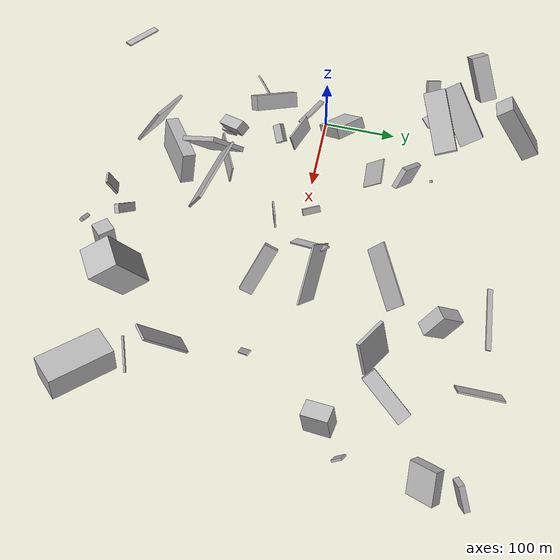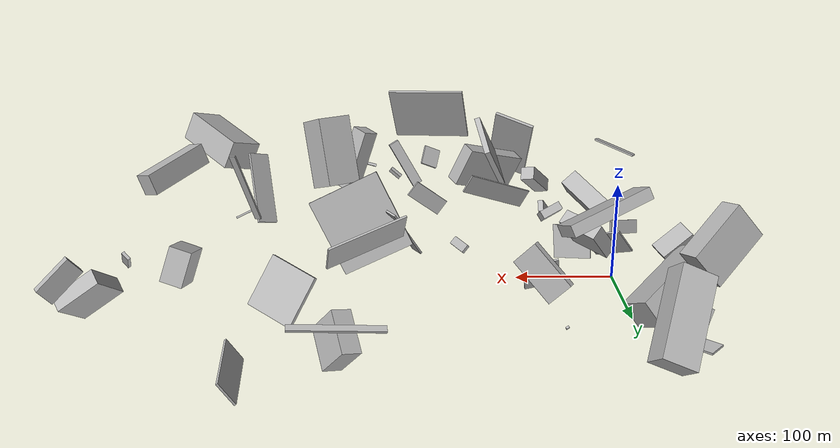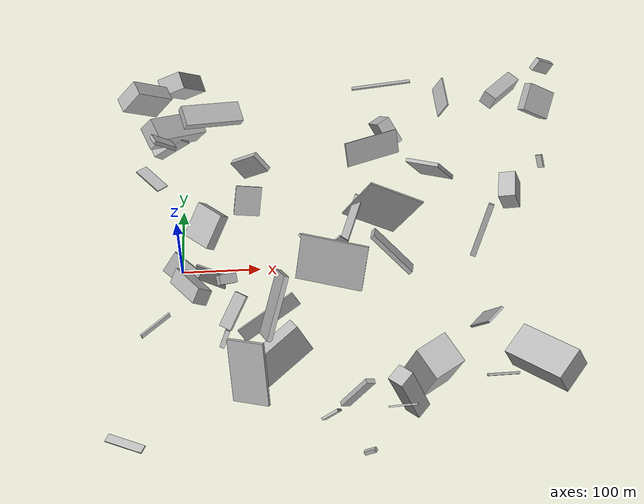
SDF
<sdf version="1.6">
 <world name="default">
  <scene>
   <sky><clouds><speed>12</speed></clouds></sky>
   <ambient>0.4 0.4 0.4 1</ambient>
   <background>0.7 0.7 0.7 1</background>
   <shadows>1</shadows>
  </scene>
  <gravity>0 0 -9.8066</gravity>
  <magnetic_field>6e-06 2.3e-05 -4.2e-05</magnetic_field>
  <physics default="0" name="default_physics" type="ode">
   <ode>
    <solver>
     <type>quick</type>
     <iters>10</iters>
     <sor>1.0</sor>
     <use_dynamic_moi_rescaling>0</use_dynamic_moi_rescaling>
    </solver>
    <constraints>
     <cfm>0</cfm>
     <erp>0.2</erp>
     <contact_max_correcting_vel>100</contact_max_correcting_vel>
     <contact_surface_layer>0.001</contact_surface_layer>
    </constraints>
   </ode>
   <max_step_size>0.004</max_step_size>
   <real_time_factor>1</real_time_factor>
   <real_time_update_rate>250</real_time_update_rate>
  </physics>
  <light name="sun" type="directional">
   <pose>0 0 10 0 0 0</pose>
   <diffuse>0.8 0.8 0.8 1</diffuse>
   <specular>0.2 0.2 0.2 1</specular>
   <attenuation>
    <range>1000</range>
    <constant>0.9</constant>
    <linear>0.01</linear>
    <quadratic>0.001</quadratic>
   </attenuation>
   <direction>-0.5 0.1 -0.9</direction>
  </light>
  <model name="building_1">
   <static>0</static>
   <pose>-54.12104526353068 -279.4260582834963 56.42306659424305 2.029990229281349 1.2701604738345085 -0.05880971864088433</pose>
   <link name="link">
    <gravity>0</gravity>
    <pose>0 0 5.0 0 0 0</pose>
    <collision name="collision"><geometry><box><size>2 53 10</size></box></geometry></collision>
    <visual name="visual">
     <cast_shadows>0</cast_shadows>
     <geometry><box><size>2 53 10</size></box></geometry>
     <material>
      <script>
       <uri>model://HANNAS_wall/materials/scripts</uri>
       <uri>model://HANNAS_wall/materials/textures</uri>
       <name>vrc/HANNAS_wall</name>
      </script>
     </material>
    </visual>
   </link>
  </model>
  <model name="building_2">
   <static>0</static>
   <pose>158.58533480993572 10.954198415435453 40.52656688939705 0.8110739471106881 0.06341755641401571 2.04821923657867</pose>
   <link name="link">
    <gravity>0</gravity>
    <pose>0 0 1.5 0 0 0</pose>
    <collision name="collision"><geometry><box><size>24 9 3</size></box></geometry></collision>
    <visual name="visual">
     <cast_shadows>0</cast_shadows>
     <geometry><box><size>24 9 3</size></box></geometry>
     <material>
      <script>
       <uri>model://HANNAS_wall/materials/scripts</uri>
       <uri>model://HANNAS_wall/materials/textures</uri>
       <name>vrc/HANNAS_wall</name>
      </script>
     </material>
    </visual>
   </link>
  </model>
  <model name="building_3">
   <static>0</static>
   <pose>317.5450510433943 -196.9492003545884 74.72234874410606 1.6592831073558536 -1.237827599436102 -1.0773850951336568</pose>
   <link name="link">
    <gravity>0</gravity>
    <pose>0 0 20.5 0 0 0</pose>
    <collision name="collision"><geometry><box><size>80 40 41</size></box></geometry></collision>
    <visual name="visual">
     <cast_shadows>0</cast_shadows>
     <geometry><box><size>80 40 41</size></box></geometry>
     <material>
      <script>
       <uri>model://HANNAS_wall/materials/scripts</uri>
       <uri>model://HANNAS_wall/materials/textures</uri>
       <name>vrc/HANNAS_wall</name>
      </script>
     </material>
    </visual>
   </link>
  </model>
  <model name="building_4">
   <static>0</static>
   <pose>282.87674144524533 207.8721314182061 34.53993922502799 1.8650441779689133 -0.7430756425512195 -1.2343311509607544</pose>
   <link name="link">
    <gravity>0</gravity>
    <pose>0 0 9.5 0 0 0</pose>
    <collision name="collision"><geometry><box><size>40 37 19</size></box></geometry></collision>
    <visual name="visual">
     <cast_shadows>0</cast_shadows>
     <geometry><box><size>40 37 19</size></box></geometry>
     <material>
      <script>
       <uri>model://HANNAS_wall/materials/scripts</uri>
       <uri>model://HANNAS_wall/materials/textures</uri>
       <name>vrc/HANNAS_wall</name>
      </script>
     </material>
    </visual>
   </link>
  </model>
  <model name="building_5">
   <static>0</static>
   <pose>-1.6601873596502355 182.02116062171706 82.81501853527615 -2.6468392210724465 -0.4229400086449476 2.0213747762980545</pose>
   <link name="link">
    <gravity>0</gravity>
    <pose>0 0 13.0 0 0 0</pose>
    <collision name="collision"><geometry><box><size>32 80 26</size></box></geometry></collision>
    <visual name="visual">
     <cast_shadows>0</cast_shadows>
     <geometry><box><size>32 80 26</size></box></geometry>
     <material>
      <script>
       <uri>model://HANNAS_wall/materials/scripts</uri>
       <uri>model://HANNAS_wall/materials/textures</uri>
       <name>vrc/HANNAS_wall</name>
      </script>
     </material>
    </visual>
   </link>
  </model>
  <model name="building_6">
   <static>0</static>
   <pose>42.369410208570116 155.94454185457096 123.69525174473085 -0.340934163165773 -0.3103837993402411 -2.7607938123857565</pose>
   <link name="link">
    <gravity>0</gravity>
    <pose>0 0 5.5 0 0 0</pose>
    <collision name="collision"><geometry><box><size>80 28 11</size></box></geometry></collision>
    <visual name="visual">
     <cast_shadows>0</cast_shadows>
     <geometry><box><size>80 28 11</size></box></geometry>
     <material>
      <script>
       <uri>model://HANNAS_wall/materials/scripts</uri>
       <uri>model://HANNAS_wall/materials/textures</uri>
       <name>vrc/HANNAS_wall</name>
      </script>
     </material>
    </visual>
   </link>
  </model>
  <model name="building_7">
   <static>0</static>
   <pose>308.37814629060455 136.54995752910804 35.65260569717689 1.018930942010238 0.9938372828579397 0.554341363909308</pose>
   <link name="link">
    <gravity>0</gravity>
    <pose>0 0 24.0 0 0 0</pose>
    <collision name="collision"><geometry><box><size>51 5 48</size></box></geometry></collision>
    <visual name="visual">
     <cast_shadows>0</cast_shadows>
     <geometry><box><size>51 5 48</size></box></geometry>
     <material>
      <script>
       <uri>model://HANNAS_wall/materials/scripts</uri>
       <uri>model://HANNAS_wall/materials/textures</uri>
       <name>vrc/HANNAS_wall</name>
      </script>
     </material>
    </visual>
   </link>
  </model>
  <model name="building_8">
   <static>0</static>
   <pose>291.6413889417407 31.792575482453405 56.59743666149948 0.21495404813556976 -1.083599200323883 -0.3268674816894052</pose>
   <link name="link">
    <gravity>0</gravity>
    <pose>0 0 37.5 0 0 0</pose>
    <collision name="collision"><geometry><box><size>80 2 75</size></box></geometry></collision>
    <visual name="visual">
     <cast_shadows>0</cast_shadows>
     <geometry><box><size>80 2 75</size></box></geometry>
     <material>
      <script>
       <uri>model://HANNAS_wall/materials/scripts</uri>
       <uri>model://HANNAS_wall/materials/textures</uri>
       <name>vrc/HANNAS_wall</name>
      </script>
     </material>
    </visual>
   </link>
  </model>
  <model name="building_9">
   <static>0</static>
   <pose>4.050706653901194 251.01895577853188 71.62987116171568 -0.6447580588841194 0.8138863875727159 1.121520052417578</pose>
   <link name="link">
    <gravity>0</gravity>
    <pose>0 0 11.5 0 0 0</pose>
    <collision name="collision"><geometry><box><size>80 32 23</size></box></geometry></collision>
    <visual name="visual">
     <cast_shadows>0</cast_shadows>
     <geometry><box><size>80 32 23</size></box></geometry>
     <material>
      <script>
       <uri>model://HANNAS_wall/materials/scripts</uri>
       <uri>model://HANNAS_wall/materials/textures</uri>
       <name>vrc/HANNAS_wall</name>
      </script>
     </material>
    </visual>
   </link>
  </model>
  <model name="building_10">
   <static>0</static>
   <pose>426.0036766977992 59.71839506440903 45.39076163418237 0.8746299354032617 -1.203731381392296 -2.5952571794444816</pose>
   <link name="link">
    <gravity>0</gravity>
    <pose>0 0 17.5 0 0 0</pose>
    <collision name="collision"><geometry><box><size>35 22 35</size></box></geometry></collision>
    <visual name="visual">
     <cast_shadows>0</cast_shadows>
     <geometry><box><size>35 22 35</size></box></geometry>
     <material>
      <script>
       <uri>model://HANNAS_wall/materials/scripts</uri>
       <uri>model://HANNAS_wall/materials/textures</uri>
       <name>vrc/HANNAS_wall</name>
      </script>
     </material>
    </visual>
   </link>
  </model>
  <model name="building_11">
   <static>0</static>
   <pose>443.64280330552515 -197.0656413245182 92.96009729554905 -2.35198766381872 -1.1804793426963396 -3.1053013794664373</pose>
   <link name="link">
    <gravity>0</gravity>
    <pose>0 0 20.5 0 0 0</pose>
    <collision name="collision"><geometry><box><size>33 80 41</size></box></geometry></collision>
    <visual name="visual">
     <cast_shadows>0</cast_shadows>
     <geometry><box><size>33 80 41</size></box></geometry>
     <material>
      <script>
       <uri>model://HANNAS_wall/materials/scripts</uri>
       <uri>model://HANNAS_wall/materials/textures</uri>
       <name>vrc/HANNAS_wall</name>
      </script>
     </material>
    </visual>
   </link>
  </model>
  <model name="building_12">
   <static>0</static>
   <pose>248.85805809318634 131.83298923622493 102.15746501741427 2.8925977409156967 -0.5606050101688325 -0.9353844364976851</pose>
   <link name="link">
    <gravity>0</gravity>
    <pose>0 0 15.5 0 0 0</pose>
    <collision name="collision"><geometry><box><size>2 80 31</size></box></geometry></collision>
    <visual name="visual">
     <cast_shadows>0</cast_shadows>
     <geometry><box><size>2 80 31</size></box></geometry>
     <material>
      <script>
       <uri>model://HANNAS_wall/materials/scripts</uri>
       <uri>model://HANNAS_wall/materials/textures</uri>
       <name>vrc/HANNAS_wall</name>
      </script>
     </material>
    </visual>
   </link>
  </model>
  <model name="building_13">
   <static>0</static>
   <pose>19.33830734830076 42.84730955828229 55.399967547136654 1.3445510213531409 -0.7417222185909076 0.9295713013821055</pose>
   <link name="link">
    <gravity>0</gravity>
    <pose>0 0 21.0 0 0 0</pose>
    <collision name="collision"><geometry><box><size>46 15 42</size></box></geometry></collision>
    <visual name="visual">
     <cast_shadows>0</cast_shadows>
     <geometry><box><size>46 15 42</size></box></geometry>
     <material>
      <script>
       <uri>model://HANNAS_wall/materials/scripts</uri>
       <uri>model://HANNAS_wall/materials/textures</uri>
       <name>vrc/HANNAS_wall</name>
      </script>
     </material>
    </visual>
   </link>
  </model>
  <model name="building_14">
   <static>0</static>
   <pose>72.46721385159724 161.08982720566266 21.282119627274824 0.714475548010428 -0.4863727126103617 -2.87422352337035</pose>
   <link name="link">
    <gravity>0</gravity>
    <pose>0 0 1.5 0 0 0</pose>
    <collision name="collision"><geometry><box><size>3 2 3</size></box></geometry></collision>
    <visual name="visual">
     <cast_shadows>0</cast_shadows>
     <geometry><box><size>3 2 3</size></box></geometry>
     <material>
      <script>
       <uri>model://HANNAS_wall/materials/scripts</uri>
       <uri>model://HANNAS_wall/materials/textures</uri>
       <name>vrc/HANNAS_wall</name>
      </script>
     </material>
    </visual>
   </link>
  </model>
  <model name="building_15">
   <static>0</static>
   <pose>372.96162185927744 -128.37440972895942 56.39851359634554 2.074602075617219 -0.27045729585290534 0.734616527199399</pose>
   <link name="link">
    <gravity>0</gravity>
    <pose>0 0 1.5 0 0 0</pose>
    <collision name="collision"><geometry><box><size>25 80 3</size></box></geometry></collision>
    <visual name="visual">
     <cast_shadows>0</cast_shadows>
     <geometry><box><size>25 80 3</size></box></geometry>
     <material>
      <script>
       <uri>model://HANNAS_wall/materials/scripts</uri>
       <uri>model://HANNAS_wall/materials/textures</uri>
       <name>vrc/HANNAS_wall</name>
      </script>
     </material>
    </visual>
   </link>
  </model>
  <model name="building_16">
   <static>0</static>
   <pose>471.41221634095285 192.59784285776706 68.07686018938324 0.8431828540172337 -0.6046435557103231 -3.0640920278526855</pose>
   <link name="link">
    <gravity>0</gravity>
    <pose>0 0 18.5 0 0 0</pose>
    <collision name="collision"><geometry><box><size>41 14 37</size></box></geometry></collision>
    <visual name="visual">
     <cast_shadows>0</cast_shadows>
     <geometry><box><size>41 14 37</size></box></geometry>
     <material>
      <script>
       <uri>model://HANNAS_wall/materials/scripts</uri>
       <uri>model://HANNAS_wall/materials/textures</uri>
       <name>vrc/HANNAS_wall</name>
      </script>
     </material>
    </visual>
   </link>
  </model>
  <model name="building_17">
   <static>0</static>
   <pose>-14.228911662721611 -8.424788841812905 36.274724398476096 -2.0923088582338347 0.8945399046677512 -2.6454914146603383</pose>
   <link name="link">
    <gravity>0</gravity>
    <pose>0 0 21.5 0 0 0</pose>
    <collision name="collision"><geometry><box><size>32 2 43</size></box></geometry></collision>
    <visual name="visual">
     <cast_shadows>0</cast_shadows>
     <geometry><box><size>32 2 43</size></box></geometry>
     <material>
      <script>
       <uri>model://HANNAS_wall/materials/scripts</uri>
       <uri>model://HANNAS_wall/materials/textures</uri>
       <name>vrc/HANNAS_wall</name>
      </script>
     </material>
    </visual>
   </link>
  </model>
  <model name="building_18">
   <static>0</static>
   <pose>-16.692361659259532 132.28536439651216 98.14100511341907 1.9110645215277295 -0.6580288497335505 -2.9622280531736616</pose>
   <link name="link">
    <gravity>0</gravity>
    <pose>0 0 9.5 0 0 0</pose>
    <collision name="collision"><geometry><box><size>32 5 19</size></box></geometry></collision>
    <visual name="visual">
     <cast_shadows>0</cast_shadows>
     <geometry><box><size>32 5 19</size></box></geometry>
     <material>
      <script>
       <uri>model://HANNAS_wall/materials/scripts</uri>
       <uri>model://HANNAS_wall/materials/textures</uri>
       <name>vrc/HANNAS_wall</name>
      </script>
     </material>
    </visual>
   </link>
  </model>
  <model name="building_19">
   <static>0</static>
   <pose>77.00349959931799 -131.32389917746627 40.55004424332166 0.6845554046405657 -1.0824217781615721 2.840888357343976</pose>
   <link name="link">
    <gravity>0</gravity>
    <pose>0 0 40.0 0 0 0</pose>
    <collision name="collision"><geometry><box><size>22 2 80</size></box></geometry></collision>
    <visual name="visual">
     <cast_shadows>0</cast_shadows>
     <geometry><box><size>22 2 80</size></box></geometry>
     <material>
      <script>
       <uri>model://HANNAS_wall/materials/scripts</uri>
       <uri>model://HANNAS_wall/materials/textures</uri>
       <name>vrc/HANNAS_wall</name>
      </script>
     </material>
    </visual>
   </link>
  </model>
  <model name="building_20">
   <static>0</static>
   <pose>231.70453415047874 253.05784530247752 67.32012214031778 -1.3810558074380177 1.2561499790980681 -1.3142568081615695</pose>
   <link name="link">
    <gravity>0</gravity>
    <pose>0 0 40.0 0 0 0</pose>
    <collision name="collision"><geometry><box><size>2 7 80</size></box></geometry></collision>
    <visual name="visual">
     <cast_shadows>0</cast_shadows>
     <geometry><box><size>2 7 80</size></box></geometry>
     <material>
      <script>
       <uri>model://HANNAS_wall/materials/scripts</uri>
       <uri>model://HANNAS_wall/materials/textures</uri>
       <name>vrc/HANNAS_wall</name>
      </script>
     </material>
    </visual>
   </link>
  </model>
  <model name="building_21">
   <static>0</static>
   <pose>267.152927373767 -25.363113749360895 66.77607888652156 1.0686798696526223 -0.7447329747439028 0.194059762073437</pose>
   <link name="link">
    <gravity>0</gravity>
    <pose>0 0 9.0 0 0 0</pose>
    <collision name="collision"><geometry><box><size>6 70 18</size></box></geometry></collision>
    <visual name="visual">
     <cast_shadows>0</cast_shadows>
     <geometry><box><size>6 70 18</size></box></geometry>
     <material>
      <script>
       <uri>model://HANNAS_wall/materials/scripts</uri>
       <uri>model://HANNAS_wall/materials/textures</uri>
       <name>vrc/HANNAS_wall</name>
      </script>
     </material>
    </visual>
   </link>
  </model>
  <model name="building_22">
   <static>0</static>
   <pose>-44.22601364608406 158.25051986067047 5.543420733602153 3.0875943388487386 -0.15714609290837364 -2.4136802466382483</pose>
   <link name="link">
    <gravity>0</gravity>
    <pose>0 0 1.0 0 0 0</pose>
    <collision name="collision"><geometry><box><size>17 45 2</size></box></geometry></collision>
    <visual name="visual">
     <cast_shadows>0</cast_shadows>
     <geometry><box><size>17 45 2</size></box></geometry>
     <material>
      <script>
       <uri>model://HANNAS_wall/materials/scripts</uri>
       <uri>model://HANNAS_wall/materials/textures</uri>
       <name>vrc/HANNAS_wall</name>
      </script>
     </material>
    </visual>
   </link>
  </model>
  <model name="building_23">
   <static>0</static>
   <pose>38.62824442389077 -28.838386821944248 28.314021233115355 -1.6801254041990528 -0.11309536027928327 2.7451093735233854</pose>
   <link name="link">
    <gravity>0</gravity>
    <pose>0 0 1.0 0 0 0</pose>
    <collision name="collision"><geometry><box><size>39 36 2</size></box></geometry></collision>
    <visual name="visual">
     <cast_shadows>0</cast_shadows>
     <geometry><box><size>39 36 2</size></box></geometry>
     <material>
      <script>
       <uri>model://HANNAS_wall/materials/scripts</uri>
       <uri>model://HANNAS_wall/materials/textures</uri>
       <name>vrc/HANNAS_wall</name>
      </script>
     </material>
    </visual>
   </link>
  </model>
  <model name="building_24">
   <static>0</static>
   <pose>392.6856437081407 -182.8837649649611 11.928839021934966 -2.677343006237894 0.3753184763619048 0.2844089416594677</pose>
   <link name="link">
    <gravity>0</gravity>
    <pose>0 0 1.0 0 0 0</pose>
    <collision name="collision"><geometry><box><size>47 3 2</size></box></geometry></collision>
    <visual name="visual">
     <cast_shadows>0</cast_shadows>
     <geometry><box><size>47 3 2</size></box></geometry>
     <material>
      <script>
       <uri>model://HANNAS_wall/materials/scripts</uri>
       <uri>model://HANNAS_wall/materials/textures</uri>
       <name>vrc/HANNAS_wall</name>
      </script>
     </material>
    </visual>
   </link>
  </model>
  <model name="building_25">
   <static>0</static>
   <pose>430.753403466076 167.3686626365963 159.09444625670483 -1.3394365031963662 -0.22865126787196918 2.4166906778050468</pose>
   <link name="link">
    <gravity>0</gravity>
    <pose>0 0 30.0 0 0 0</pose>
    <collision name="collision"><geometry><box><size>17 18 60</size></box></geometry></collision>
    <visual name="visual">
     <cast_shadows>0</cast_shadows>
     <geometry><box><size>17 18 60</size></box></geometry>
     <material>
      <script>
       <uri>model://HANNAS_wall/materials/scripts</uri>
       <uri>model://HANNAS_wall/materials/textures</uri>
       <name>vrc/HANNAS_wall</name>
      </script>
     </material>
    </visual>
   </link>
  </model>
  <model name="building_26">
   <static>0</static>
   <pose>349.2869622001564 260.17667678598946 25.786962145698627 -0.14805690420805365 0.5575293244269858 -0.04790803865797051</pose>
   <link name="link">
    <gravity>0</gravity>
    <pose>0 0 12.0 0 0 0</pose>
    <collision name="collision"><geometry><box><size>2 60 24</size></box></geometry></collision>
    <visual name="visual">
     <cast_shadows>0</cast_shadows>
     <geometry><box><size>2 60 24</size></box></geometry>
     <material>
      <script>
       <uri>model://HANNAS_wall/materials/scripts</uri>
       <uri>model://HANNAS_wall/materials/textures</uri>
       <name>vrc/HANNAS_wall</name>
      </script>
     </material>
    </visual>
   </link>
  </model>
  <model name="building_27">
   <static>0</static>
   <pose>-30.859453747858836 -92.66390256567954 12.180691676761402 0.21011750094438353 0.2805361839189766 -0.8850321071119547</pose>
   <link name="link">
    <gravity>0</gravity>
    <pose>0 0 7.5 0 0 0</pose>
    <collision name="collision"><geometry><box><size>2 44 15</size></box></geometry></collision>
    <visual name="visual">
     <cast_shadows>0</cast_shadows>
     <geometry><box><size>2 44 15</size></box></geometry>
     <material>
      <script>
       <uri>model://HANNAS_wall/materials/scripts</uri>
       <uri>model://HANNAS_wall/materials/textures</uri>
       <name>vrc/HANNAS_wall</name>
      </script>
     </material>
    </visual>
   </link>
  </model>
  <model name="building_28">
   <static>0</static>
   <pose>64.95335605380745 -202.8819167710583 75.84241346570855 1.0065624494571912 -1.0569802988516575 1.6727207229658227</pose>
   <link name="link">
    <gravity>0</gravity>
    <pose>0 0 23.5 0 0 0</pose>
    <collision name="collision"><geometry><box><size>80 4 47</size></box></geometry></collision>
    <visual name="visual">
     <cast_shadows>0</cast_shadows>
     <geometry><box><size>80 4 47</size></box></geometry>
     <material>
      <script>
       <uri>model://HANNAS_wall/materials/scripts</uri>
       <uri>model://HANNAS_wall/materials/textures</uri>
       <name>vrc/HANNAS_wall</name>
      </script>
     </material>
    </visual>
   </link>
  </model>
  <model name="building_29">
   <static>0</static>
   <pose>211.01621860882562 -224.68499933327064 53.97509870154042 1.8906046915509673 -1.0520277778045843 -0.09262582742669213</pose>
   <link name="link">
    <gravity>0</gravity>
    <pose>0 0 3.0 0 0 0</pose>
    <collision name="collision"><geometry><box><size>59 12 6</size></box></geometry></collision>
    <visual name="visual">
     <cast_shadows>0</cast_shadows>
     <geometry><box><size>59 12 6</size></box></geometry>
     <material>
      <script>
       <uri>model://HANNAS_wall/materials/scripts</uri>
       <uri>model://HANNAS_wall/materials/textures</uri>
       <name>vrc/HANNAS_wall</name>
      </script>
     </material>
    </visual>
   </link>
  </model>
  <model name="building_30">
   <static>0</static>
   <pose>469.4183447928701 107.46754868925537 68.19724337083193 2.0290387879964107 0.6007580427298818 2.5596896184430813</pose>
   <link name="link">
    <gravity>0</gravity>
    <pose>0 0 1.5 0 0 0</pose>
    <collision name="collision"><geometry><box><size>9 17 3</size></box></geometry></collision>
    <visual name="visual">
     <cast_shadows>0</cast_shadows>
     <geometry><box><size>9 17 3</size></box></geometry>
     <material>
      <script>
       <uri>model://HANNAS_wall/materials/scripts</uri>
       <uri>model://HANNAS_wall/materials/textures</uri>
       <name>vrc/HANNAS_wall</name>
      </script>
     </material>
    </visual>
   </link>
  </model>
  <model name="building_31">
   <static>0</static>
   <pose>69.11823617085446 -110.20103885691378 63.56444101599122 0.23560494598465834 -0.5853985094577322 0.9796354816051457</pose>
   <link name="link">
    <gravity>0</gravity>
    <pose>0 0 7.0 0 0 0</pose>
    <collision name="collision"><geometry><box><size>45 15 14</size></box></geometry></collision>
    <visual name="visual">
     <cast_shadows>0</cast_shadows>
     <geometry><box><size>45 15 14</size></box></geometry>
     <material>
      <script>
       <uri>model://HANNAS_wall/materials/scripts</uri>
       <uri>model://HANNAS_wall/materials/textures</uri>
       <name>vrc/HANNAS_wall</name>
      </script>
     </material>
    </visual>
   </link>
  </model>
  <model name="building_32">
   <static>0</static>
   <pose>170.854288240376 -257.9261787673788 48.3794000067699 1.1025957679597993 -0.40476586454725194 2.078305395519695</pose>
   <link name="link">
    <gravity>0</gravity>
    <pose>0 0 10.5 0 0 0</pose>
    <collision name="collision"><geometry><box><size>3 23 21</size></box></geometry></collision>
    <visual name="visual">
     <cast_shadows>0</cast_shadows>
     <geometry><box><size>3 23 21</size></box></geometry>
     <material>
      <script>
       <uri>model://HANNAS_wall/materials/scripts</uri>
       <uri>model://HANNAS_wall/materials/textures</uri>
       <name>vrc/HANNAS_wall</name>
      </script>
     </material>
    </visual>
   </link>
  </model>
  <model name="building_33">
   <static>0</static>
   <pose>-37.611973391940694 182.23880136110063 38.6112600064229 -0.5640913194948136 -0.902877511186733 -2.304883255021536</pose>
   <link name="link">
    <gravity>0</gravity>
    <pose>0 0 22.5 0 0 0</pose>
    <collision name="collision"><geometry><box><size>22 29 45</size></box></geometry></collision>
    <visual name="visual">
     <cast_shadows>0</cast_shadows>
     <geometry><box><size>22 29 45</size></box></geometry>
     <material>
      <script>
       <uri>model://HANNAS_wall/materials/scripts</uri>
       <uri>model://HANNAS_wall/materials/textures</uri>
       <name>vrc/HANNAS_wall</name>
      </script>
     </material>
    </visual>
   </link>
  </model>
  <model name="building_34">
   <static>0</static>
   <pose>217.3931783553129 -286.39391095832485 16.428866248441697 -0.44280005529031086 0.8109444489845119 -0.7902890984322675</pose>
   <link name="link">
    <gravity>0</gravity>
    <pose>0 0 8.0 0 0 0</pose>
    <collision name="collision"><geometry><box><size>5 5 16</size></box></geometry></collision>
    <visual name="visual">
     <cast_shadows>0</cast_shadows>
     <geometry><box><size>5 5 16</size></box></geometry>
     <material>
      <script>
       <uri>model://HANNAS_wall/materials/scripts</uri>
       <uri>model://HANNAS_wall/materials/textures</uri>
       <name>vrc/HANNAS_wall</name>
      </script>
     </material>
    </visual>
   </link>
  </model>
  <model name="building_35">
   <static>0</static>
   <pose>120.59671755894809 -128.74454173381258 95.98784534461667 1.0901291143687308 -0.7027530742259243 -1.3015624043149452</pose>
   <link name="link">
    <gravity>0</gravity>
    <pose>0 0 3.0 0 0 0</pose>
    <collision name="collision"><geometry><box><size>46 80 6</size></box></geometry></collision>
    <visual name="visual">
     <cast_shadows>0</cast_shadows>
     <geometry><box><size>46 80 6</size></box></geometry>
     <material>
      <script>
       <uri>model://HANNAS_wall/materials/scripts</uri>
       <uri>model://HANNAS_wall/materials/textures</uri>
       <name>vrc/HANNAS_wall</name>
      </script>
     </material>
    </visual>
   </link>
  </model>
  <model name="building_36">
   <static>0</static>
   <pose>52.78728492795864 -125.81431483546538 30.436280543504154 -1.9622241232333497 -0.8514890713292076 -1.554333672926899</pose>
   <link name="link">
    <gravity>0</gravity>
    <pose>0 0 3.0 0 0 0</pose>
    <collision name="collision"><geometry><box><size>13 22 6</size></box></geometry></collision>
    <visual name="visual">
     <cast_shadows>0</cast_shadows>
     <geometry><box><size>13 22 6</size></box></geometry>
     <material>
      <script>
       <uri>model://HANNAS_wall/materials/scripts</uri>
       <uri>model://HANNAS_wall/materials/textures</uri>
       <name>vrc/HANNAS_wall</name>
      </script>
     </material>
    </visual>
   </link>
  </model>
  <model name="building_37">
   <static>0</static>
   <pose>-31.22298766851742 201.61382815790594 130.34433550751456 2.447534316711682 0.1832358602663504 -1.1758983796039546</pose>
   <link name="link">
    <gravity>0</gravity>
    <pose>0 0 18.5 0 0 0</pose>
    <collision name="collision"><geometry><box><size>21 58 37</size></box></geometry></collision>
    <visual name="visual">
     <cast_shadows>0</cast_shadows>
     <geometry><box><size>21 58 37</size></box></geometry>
     <material>
      <script>
       <uri>model://HANNAS_wall/materials/scripts</uri>
       <uri>model://HANNAS_wall/materials/textures</uri>
       <name>vrc/HANNAS_wall</name>
      </script>
     </material>
    </visual>
   </link>
  </model>
  <model name="building_38">
   <static>0</static>
   <pose>127.01947284704767 -180.5695590219371 42.42662023133164 -0.31675665618284915 -0.2911452098141673 0.6207603470777068</pose>
   <link name="link">
    <gravity>0</gravity>
    <pose>0 0 22.5 0 0 0</pose>
    <collision name="collision"><geometry><box><size>80 17 45</size></box></geometry></collision>
    <visual name="visual">
     <cast_shadows>0</cast_shadows>
     <geometry><box><size>80 17 45</size></box></geometry>
     <material>
      <script>
       <uri>model://HANNAS_wall/materials/scripts</uri>
       <uri>model://HANNAS_wall/materials/textures</uri>
       <name>vrc/HANNAS_wall</name>
      </script>
     </material>
    </visual>
   </link>
  </model>
  <model name="building_39">
   <static>0</static>
   <pose>23.703643158671902 -68.53081425963379 57.26912237397857 -0.49771391053520864 -0.7956489153845874 0.9258490297696996</pose>
   <link name="link">
    <gravity>0</gravity>
    <pose>0 0 10.0 0 0 0</pose>
    <collision name="collision"><geometry><box><size>20 60 20</size></box></geometry></collision>
    <visual name="visual">
     <cast_shadows>0</cast_shadows>
     <geometry><box><size>20 60 20</size></box></geometry>
     <material>
      <script>
       <uri>model://HANNAS_wall/materials/scripts</uri>
       <uri>model://HANNAS_wall/materials/textures</uri>
       <name>vrc/HANNAS_wall</name>
      </script>
     </material>
    </visual>
   </link>
  </model>
  <model name="building_40">
   <static>0</static>
   <pose>482.2179977975611 241.34568291505258 100.64883326112086 -0.00411530055723966 0.6940241078852654 0.526179861949634</pose>
   <link name="link">
    <gravity>0</gravity>
    <pose>0 0 8.5 0 0 0</pose>
    <collision name="collision"><geometry><box><size>34 7 17</size></box></geometry></collision>
    <visual name="visual">
     <cast_shadows>0</cast_shadows>
     <geometry><box><size>34 7 17</size></box></geometry>
     <material>
      <script>
       <uri>model://HANNAS_wall/materials/scripts</uri>
       <uri>model://HANNAS_wall/materials/textures</uri>
       <name>vrc/HANNAS_wall</name>
      </script>
     </material>
    </visual>
   </link>
  </model>
  <model name="building_41">
   <static>0</static>
   <pose>226.18273128082478 -117.04759416839084 145.32100638953727 -1.445105622726134 -1.1448396958439102 1.1959711894453935</pose>
   <link name="link">
    <gravity>0</gravity>
    <pose>0 0 40.0 0 0 0</pose>
    <collision name="collision"><geometry><box><size>59 3 80</size></box></geometry></collision>
    <visual name="visual">
     <cast_shadows>0</cast_shadows>
     <geometry><box><size>59 3 80</size></box></geometry>
     <material>
      <script>
       <uri>model://HANNAS_wall/materials/scripts</uri>
       <uri>model://HANNAS_wall/materials/textures</uri>
       <name>vrc/HANNAS_wall</name>
      </script>
     </material>
    </visual>
   </link>
  </model>
  <model name="building_42">
   <static>0</static>
   <pose>247.32341249636397 -243.65161438362344 45.582934263319366 -1.274386099903128 0.560431934030171 -1.5041563535908968</pose>
   <link name="link">
    <gravity>0</gravity>
    <pose>0 0 17.5 0 0 0</pose>
    <collision name="collision"><geometry><box><size>2 3 35</size></box></geometry></collision>
    <visual name="visual">
     <cast_shadows>0</cast_shadows>
     <geometry><box><size>2 3 35</size></box></geometry>
     <material>
      <script>
       <uri>model://HANNAS_wall/materials/scripts</uri>
       <uri>model://HANNAS_wall/materials/textures</uri>
       <name>vrc/HANNAS_wall</name>
      </script>
     </material>
    </visual>
   </link>
  </model>
  <model name="building_43">
   <static>0</static>
   <pose>48.95907528041788 -58.186094351505844 57.19746712950308 -1.9888578596342357 0.6029650668841685 -1.3877642559351244</pose>
   <link name="link">
    <gravity>0</gravity>
    <pose>0 0 12.0 0 0 0</pose>
    <collision name="collision"><geometry><box><size>12 9 24</size></box></geometry></collision>
    <visual name="visual">
     <cast_shadows>0</cast_shadows>
     <geometry><box><size>12 9 24</size></box></geometry>
     <material>
      <script>
       <uri>model://HANNAS_wall/materials/scripts</uri>
       <uri>model://HANNAS_wall/materials/textures</uri>
       <name>vrc/HANNAS_wall</name>
      </script>
     </material>
    </visual>
   </link>
  </model>
  <model name="building_44">
   <static>0</static>
   <pose>86.08790096485438 84.08476991822675 39.221320635720744 -0.3560925115047977 0.9520583989027422 -1.8112718730911275</pose>
   <link name="link">
    <gravity>0</gravity>
    <pose>0 0 1.0 0 0 0</pose>
    <collision name="collision"><geometry><box><size>39 34 2</size></box></geometry></collision>
    <visual name="visual">
     <cast_shadows>0</cast_shadows>
     <geometry><box><size>39 34 2</size></box></geometry>
     <material>
      <script>
       <uri>model://HANNAS_wall/materials/scripts</uri>
       <uri>model://HANNAS_wall/materials/textures</uri>
       <name>vrc/HANNAS_wall</name>
      </script>
     </material>
    </visual>
   </link>
  </model>
  <model name="building_45">
   <static>0</static>
   <pose>264.4211882866457 -224.70504495104453 55.72027454349512 1.3583439956774384 -0.23280643675210907 0.8200827871577305</pose>
   <link name="link">
    <gravity>0</gravity>
    <pose>0 0 10.5 0 0 0</pose>
    <collision name="collision"><geometry><box><size>21 76 21</size></box></geometry></collision>
    <visual name="visual">
     <cast_shadows>0</cast_shadows>
     <geometry><box><size>21 76 21</size></box></geometry>
     <material>
      <script>
       <uri>model://HANNAS_wall/materials/scripts</uri>
       <uri>model://HANNAS_wall/materials/textures</uri>
       <name>vrc/HANNAS_wall</name>
      </script>
     </material>
    </visual>
   </link>
  </model>
  <model name="building_46">
   <static>0</static>
   <pose>191.28679960752123 -31.47134594028083 77.12397216626832 1.6287205433819005 0.6583652471920637 -2.813718977530175</pose>
   <link name="link">
    <gravity>0</gravity>
    <pose>0 0 1.0 0 0 0</pose>
    <collision name="collision"><geometry><box><size>41 17 2</size></box></geometry></collision>
    <visual name="visual">
     <cast_shadows>0</cast_shadows>
     <geometry><box><size>41 17 2</size></box></geometry>
     <material>
      <script>
       <uri>model://HANNAS_wall/materials/scripts</uri>
       <uri>model://HANNAS_wall/materials/textures</uri>
       <name>vrc/HANNAS_wall</name>
      </script>
     </material>
    </visual>
   </link>
  </model>
  <model name="building_47">
   <static>0</static>
   <pose>214.9551155502541 20.22511736032858 59.225694194579646 2.2950030436841584 0.224647978093196 2.3762124141499537</pose>
   <link name="link">
    <gravity>0</gravity>
    <pose>0 0 1.0 0 0 0</pose>
    <collision name="collision"><geometry><box><size>12 80 2</size></box></geometry></collision>
    <visual name="visual">
     <cast_shadows>0</cast_shadows>
     <geometry><box><size>12 80 2</size></box></geometry>
     <material>
      <script>
       <uri>model://HANNAS_wall/materials/scripts</uri>
       <uri>model://HANNAS_wall/materials/textures</uri>
       <name>vrc/HANNAS_wall</name>
      </script>
     </material>
    </visual>
   </link>
  </model>
  <model name="building_48">
   <static>0</static>
   <pose>82.26908742804206 131.2676788897873 70.5001791733125 2.3932853736568163 -0.03433977284338913 1.0671362157983928</pose>
   <link name="link">
    <gravity>0</gravity>
    <pose>0 0 14.5 0 0 0</pose>
    <collision name="collision"><geometry><box><size>7 50 29</size></box></geometry></collision>
    <visual name="visual">
     <cast_shadows>0</cast_shadows>
     <geometry><box><size>7 50 29</size></box></geometry>
     <material>
      <script>
       <uri>model://HANNAS_wall/materials/scripts</uri>
       <uri>model://HANNAS_wall/materials/textures</uri>
       <name>vrc/HANNAS_wall</name>
      </script>
     </material>
    </visual>
   </link>
  </model>
  <model name="building_49">
   <static>0</static>
   <pose>367.6243269882591 -33.224464939301384 54.49748797375028 -0.3502744718981302 0.12545210634227602 -0.4422013092446002</pose>
   <link name="link">
    <gravity>0</gravity>
    <pose>0 0 40.0 0 0 0</pose>
    <collision name="collision"><geometry><box><size>7 2 80</size></box></geometry></collision>
    <visual name="visual">
     <cast_shadows>0</cast_shadows>
     <geometry><box><size>7 2 80</size></box></geometry>
     <material>
      <script>
       <uri>model://HANNAS_wall/materials/scripts</uri>
       <uri>model://HANNAS_wall/materials/textures</uri>
       <name>vrc/HANNAS_wall</name>
      </script>
     </material>
    </visual>
   </link>
  </model>
 </world>
</sdf>
